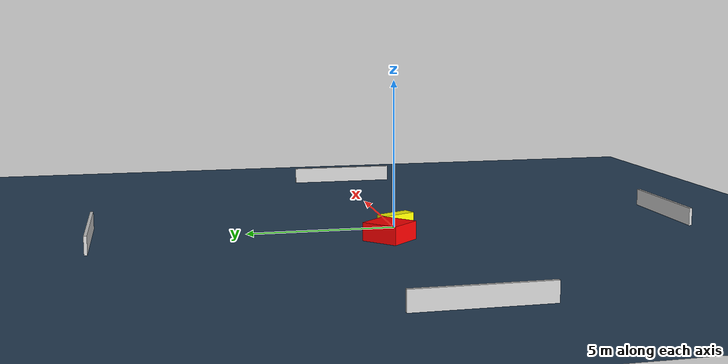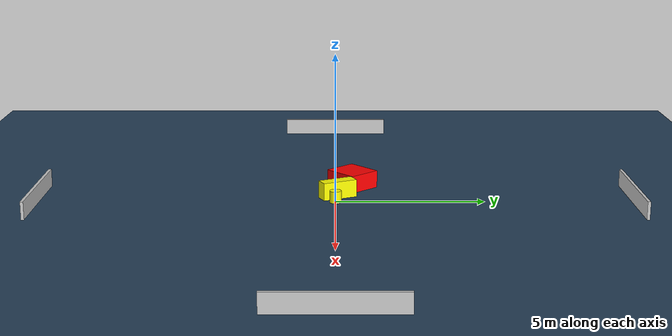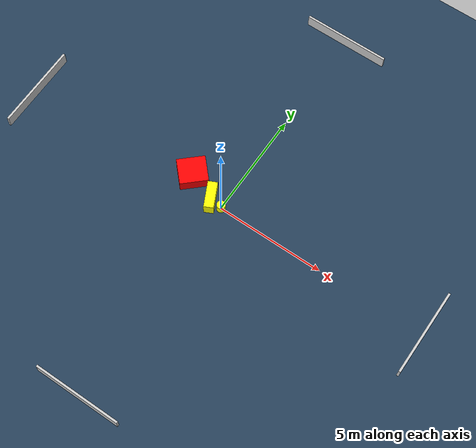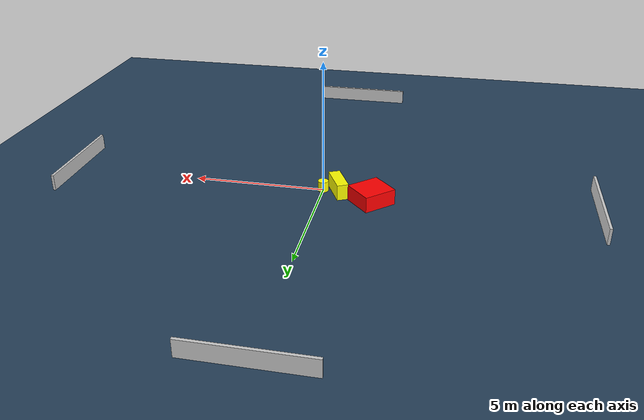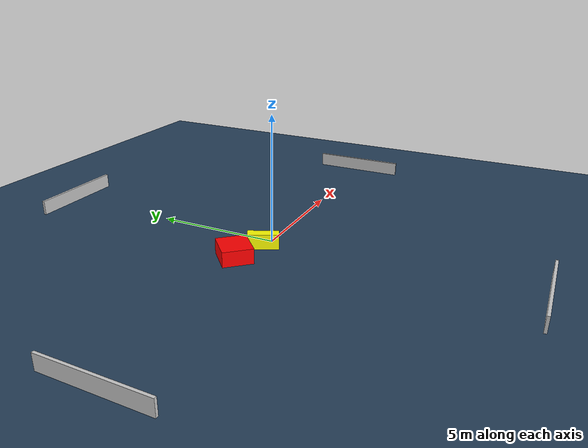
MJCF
<?xml version="1.0" ?>
<mujoco model="generated_environment">
  <option timestep="0.01" integrator="RK4" cone="elliptic"/>
  <default>
    <geom density="1"/>
  </default>
  <asset>
    <texture builtin="gradient" height="3072" name="skybox" rgb1="0.3 0.5 0.7" rgb2="0 0 0" type="skybox" width="512"/>
    <texture builtin="checker" height="300" name="groundplane" rgb1="0.2 0.3 0.4" rgb2="0.1 0.2 0.3" type="2d" width="300"/>
    <material name="groundplane" reflectance="0.2" texrepeat="5 5" texture="groundplane"/>
  </asset>
  <worldbody>
    <light dir="0 0 -1" directional="true" pos="0 0 1.5"/>
    <geom condim="3" friction="0.5 0.005 0.001" material="groundplane" name="floor" pos="0 0 0" size="0 0 0.05" type="plane"/>
    <body name="walls">
      <geom name="wall_1" condim="4" pos="-10.0 0.0 0.3" rgba="0.800000011920929 0.800000011920929 0.800000011920929 1.0" size="0.05 2.0 0.3" type="box"/>
      <geom name="wall_2" condim="4" pos="10.0 0.0 0.3" rgba="0.800000011920929 0.800000011920929 0.800000011920929 1.0" size="0.05 2.0 0.3" type="box"/>
      <geom name="wall_3" condim="4" pos="0.0 -10.0 0.3" rgba="0.800000011920929 0.800000011920929 0.800000011920929 1.0" size="2.0 0.05 0.3" type="box"/>
      <geom name="wall_4" condim="4" pos="0.0 10.0 0.3" rgba="0.800000011920929 0.800000011920929 0.800000011920929 1.0" size="2.0 0.05 0.3" type="box"/>
    </body>
    <body name="robot">
      <joint name="joint_x" type="slide" pos="0 0 0" axis="1 0 0"/>
      <joint name="joint_y" type="slide" pos="0 0 0" axis="0 1 0"/>
      <geom name="robot" type="cylinder" pos="0.0 0.0 0.2" size="0.2 0.2 0.0" mass="5.0" friction="1.0 0.005 0.0001" condim="4" rgba="1.0 1.0 0.0 1.0"/>
    </body>
    <body name="obstacle_1_movable">
      <geom name="obstacle_1_movable" condim="4" pos="-0.5932736572991983 0.07616441624689513 0.3" euler="0 0 115.92340499800574" friction="0.0 0.005 0.001" rgba="1.0 1.0 0.0 1.0" size="0.6077861639443621 0.21936682691306061 0.3" type="box" mass="0.1"/>
      <joint type="free"/>
    </body>
    <body name="obstacle_2_static">
      <geom name="obstacle_2_static" condim="4" pos="-1.9022811598349925 0.5847392691243469 0.3" euler="0 0 132.84382559183783" friction="0.0 0.005 0.001" rgba="1.0 0.0 0.0 1.0" size="0.591255525499852 0.6350714119151797 0.3" type="box"/>
    </body>
  </worldbody>
  <actuator>
    <motor name="actuator_x" joint="joint_x" gear="1" ctrlrange="-1 1"/>
    <motor name="actuator_y" joint="joint_y" gear="1" ctrlrange="-1 1"/>
  </actuator>
</mujoco>
